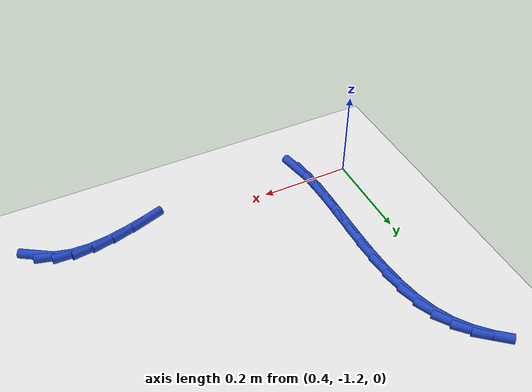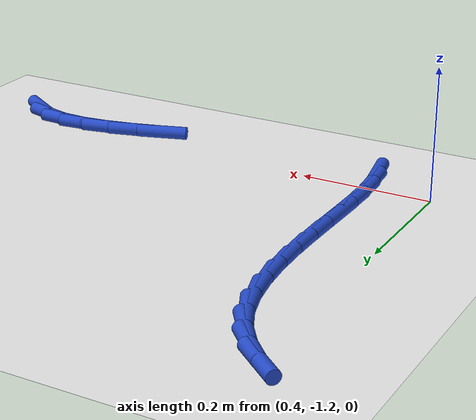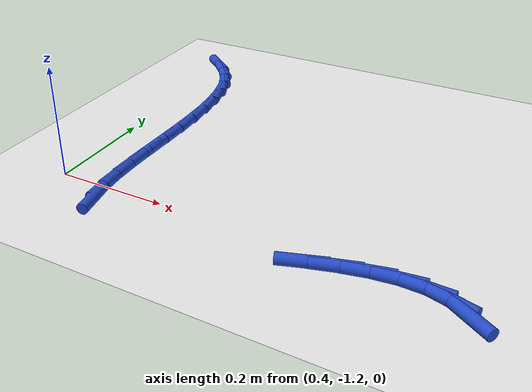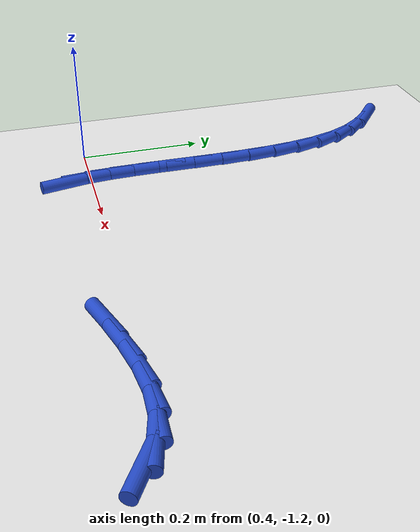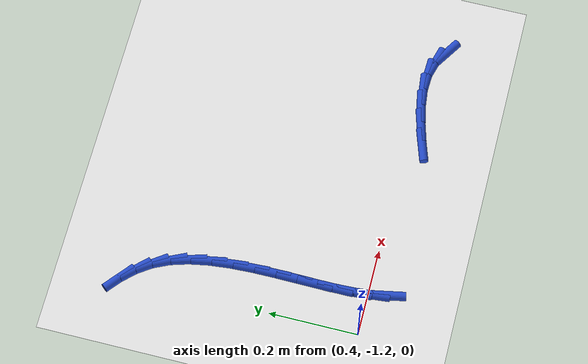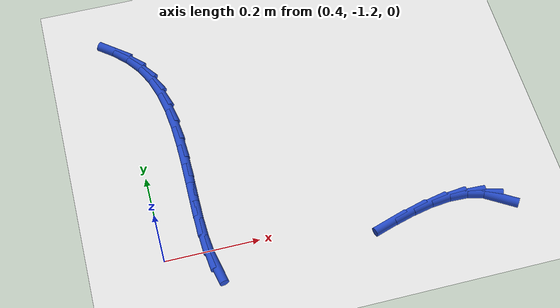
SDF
<sdf version="1.6">
 <world name="default">
  <model name="ground_plane">
   <static>1</static>
   <link name="link">
    <collision name="collision">
     <geometry><plane><normal>0 0 1</normal><size>100 100</size></plane></geometry>
     <surface><friction><ode><mu>100</mu><mu2>50</mu2></ode></friction></surface>
    </collision>
    <visual name="visual">
     <cast_shadows>0</cast_shadows>
     <geometry><plane><normal>0 0 1</normal><size>100 100</size></plane></geometry>
     <material>
      <script><uri>file://media/materials/scripts/gazebo.material</uri><name>Gazebo/WhiteGlow</name></script>
     </material>
    </visual>
   </link>
  </model>
  <model name="line">
   <link name="link_208">
    <pose>1.1066500811658857 -1.2365685479417203 0.01 0 1.57 -0.5632479367477995</pose>
    <collision name="collision">
     <geometry><cylinder><radius>0.01</radius><length>0.08</length></cylinder></geometry>
    </collision>
    <visual name="visual">
     <material>
      <script><name>Gazebo/Blue</name><uri>file://media/materials/scripts/gazebo.material</uri></script>
     </material>
     <geometry><cylinder><radius>0.01</radius><length>0.08</length></cylinder></geometry>
    </visual>
   </link>
   <link name="link_209">
    <pose>1.0775888376421126 -1.2182168558706332 0.01 0 1.57 -0.26173927755150384</pose>
    <collision name="collision">
     <geometry><cylinder><radius>0.01</radius><length>0.08</length></cylinder></geometry>
    </collision>
    <visual name="visual">
     <material>
      <script><name>Gazebo/Blue</name><uri>file://media/materials/scripts/gazebo.material</uri></script>
     </material>
     <geometry><cylinder><radius>0.01</radius><length>0.08</length></cylinder></geometry>
    </visual>
   </link>
   <link name="link_210">
    <pose>1.0430972445284719 -1.2089770834687 0.01 0 1.57 -0.03852570394564803</pose>
    <collision name="collision">
     <geometry><cylinder><radius>0.01</radius><length>0.08</length></cylinder></geometry>
    </collision>
    <visual name="visual">
     <material>
      <script><name>Gazebo/Blue</name><uri>file://media/materials/scripts/gazebo.material</uri></script>
     </material>
     <geometry><cylinder><radius>0.01</radius><length>0.08</length></cylinder></geometry>
    </visual>
   </link>
   <link name="link_211">
    <pose>1.0041111402777445 -1.2074743728287647 0.01 0 1.57 0.11372780768299451</pose>
    <collision name="collision">
     <geometry><cylinder><radius>0.01</radius><length>0.08</length></cylinder></geometry>
    </collision>
    <visual name="visual">
     <material>
      <script><name>Gazebo/Blue</name><uri>file://media/materials/scripts/gazebo.material</uri></script>
     </material>
     <geometry><cylinder><radius>0.01</radius><length>0.08</length></cylinder></geometry>
    </visual>
   </link>
   <link name="link_212">
    <pose>0.9615663633427146 -1.2123338660436753 0.01 0 1.57 0.214648176576915</pose>
    <collision name="collision">
     <geometry><cylinder><radius>0.01</radius><length>0.08</length></cylinder></geometry>
    </collision>
    <visual name="visual">
     <material>
      <script><name>Gazebo/Blue</name><uri>file://media/materials/scripts/gazebo.material</uri></script>
     </material>
     <geometry><cylinder><radius>0.01</radius><length>0.08</length></cylinder></geometry>
    </visual>
   </link>
   <link name="link_213">
    <pose>0.916398752176163 -1.2221807052062776 0.01 0 1.57 0.27972562378590154</pose>
    <collision name="collision">
     <geometry><cylinder><radius>0.01</radius><length>0.08</length></cylinder></geometry>
    </collision>
    <visual name="visual">
     <material>
      <script><name>Gazebo/Blue</name><uri>file://media/materials/scripts/gazebo.material</uri></script>
     </material>
     <geometry><cylinder><radius>0.01</radius><length>0.08</length></cylinder></geometry>
    </visual>
   </link>
   <link name="link_214">
    <pose>0.869544145230875 -1.2356400324094166 0.01 0 1.57 0.3185023262385388</pose>
    <collision name="collision">
     <geometry><cylinder><radius>0.01</radius><length>0.08</length></cylinder></geometry>
    </collision>
    <visual name="visual">
     <material>
      <script><name>Gazebo/Blue</name><uri>file://media/materials/scripts/gazebo.material</uri></script>
     </material>
     <geometry><cylinder><radius>0.01</radius><length>0.08</length></cylinder></geometry>
    </visual>
   </link>
   <link name="link_225">
    <pose>0.5001221642047236 -1.2423184709547694 0.01 0 1.57 -1.3781047402267745</pose>
    <collision name="collision">
     <geometry><cylinder><radius>0.01</radius><length>0.08</length></cylinder></geometry>
    </collision>
    <visual name="visual">
     <material>
      <script><name>Gazebo/Blue</name><uri>file://media/materials/scripts/gazebo.material</uri></script>
     </material>
     <geometry><cylinder><radius>0.01</radius><length>0.08</length></cylinder></geometry>
    </visual>
   </link>
   <link name="link_226">
    <pose>0.49346331831398366 -1.2081902204230692 0.01 0 1.57 -1.4773316086922346</pose>
    <collision name="collision">
     <geometry><cylinder><radius>0.01</radius><length>0.08</length></cylinder></geometry>
    </collision>
    <visual name="visual">
     <material>
      <script><name>Gazebo/Blue</name><uri>file://media/materials/scripts/gazebo.material</uri></script>
     </material>
     <geometry><cylinder><radius>0.01</radius><length>0.08</length></cylinder></geometry>
    </visual>
   </link>
   <link name="link_227">
    <pose>0.4898340518722094 -1.1694730194213152 0.01 0 1.57 -1.5378362701757595</pose>
    <collision name="collision">
     <geometry><cylinder><radius>0.01</radius><length>0.08</length></cylinder></geometry>
    </collision>
    <visual name="visual">
     <material>
      <script><name>Gazebo/Blue</name><uri>file://media/materials/scripts/gazebo.material</uri></script>
     </material>
     <geometry><cylinder><radius>0.01</radius><length>0.08</length></cylinder></geometry>
    </visual>
   </link>
   <link name="link_228">
    <pose>0.4884351069312926 -1.1270447453453794 0.01 0 1.57 1.5700867032096348</pose>
    <collision name="collision">
     <geometry><cylinder><radius>0.01</radius><length>0.08</length></cylinder></geometry>
    </collision>
    <visual name="visual">
     <material>
      <script><name>Gazebo/Blue</name><uri>file://media/materials/scripts/gazebo.material</uri></script>
     </material>
     <geometry><cylinder><radius>0.01</radius><length>0.08</length></cylinder></geometry>
    </visual>
   </link>
   <link name="link_229">
    <pose>0.4884672255431251 -1.0817832755911345 0.01 0 1.57 1.5567360636366474</pose>
    <collision name="collision">
     <geometry><cylinder><radius>0.01</radius><length>0.08</length></cylinder></geometry>
    </collision>
    <visual name="visual">
     <material>
      <script><name>Gazebo/Blue</name><uri>file://media/materials/scripts/gazebo.material</uri></script>
     </material>
     <geometry><cylinder><radius>0.01</radius><length>0.08</length></cylinder></geometry>
    </visual>
   </link>
   <link name="link_230">
    <pose>0.4891311497595988 -1.0345664875544556 0.01 0 1.57 1.5605165398329173</pose>
    <collision name="collision">
     <geometry><cylinder><radius>0.01</radius><length>0.08</length></cylinder></geometry>
    </collision>
    <visual name="visual">
     <material>
      <script><name>Gazebo/Blue</name><uri>file://media/materials/scripts/gazebo.material</uri></script>
     </material>
     <geometry><cylinder><radius>0.01</radius><length>0.08</length></cylinder></geometry>
    </visual>
   </link>
   <link name="link_231">
    <pose>0.48962762163260554 -0.9862722586312149 0.01 0 1.57 -1.561099752094528</pose>
    <collision name="collision">
     <geometry><cylinder><radius>0.01</radius><length>0.08</length></cylinder></geometry>
    </collision>
    <visual name="visual">
     <material>
      <script><name>Gazebo/Blue</name><uri>file://media/materials/scripts/gazebo.material</uri></script>
     </material>
     <geometry><cylinder><radius>0.01</radius><length>0.08</length></cylinder></geometry>
    </visual>
   </link>
   <link name="link_232">
    <pose>0.4891573832140371 -0.9377784662172859 0.01 0 1.57 -1.5240629566282695</pose>
    <collision name="collision">
     <geometry><cylinder><radius>0.01</radius><length>0.08</length></cylinder></geometry>
    </collision>
    <visual name="visual">
     <material>
      <script><name>Gazebo/Blue</name><uri>file://media/materials/scripts/gazebo.material</uri></script>
     </material>
     <geometry><cylinder><radius>0.01</radius><length>0.08</length></cylinder></geometry>
    </visual>
   </link>
   <link name="link_233">
    <pose>0.4869211765557855 -0.8899629877085412 0.01 0 1.57 -1.4673727440749156</pose>
    <collision name="collision">
     <geometry><cylinder><radius>0.01</radius><length>0.08</length></cylinder></geometry>
    </collision>
    <visual name="visual">
     <material>
      <script><name>Gazebo/Blue</name><uri>file://media/materials/scripts/gazebo.material</uri></script>
     </material>
     <geometry><cylinder><radius>0.01</radius><length>0.08</length></cylinder></geometry>
    </visual>
   </link>
   <link name="link_234">
    <pose>0.48211974370974253 -0.8437037005008543 0.01 0 1.57 -1.3865796735610674</pose>
    <collision name="collision">
     <geometry><cylinder><radius>0.01</radius><length>0.08</length></cylinder></geometry>
    </collision>
    <visual name="visual">
     <material>
      <script><name>Gazebo/Blue</name><uri>file://media/materials/scripts/gazebo.material</uri></script>
     </material>
     <geometry><cylinder><radius>0.01</radius><length>0.08</length></cylinder></geometry>
    </visual>
   </link>
   <link name="link_235">
    <pose>0.47395382672779995 -0.7998784819900983 0.01 0 1.57 -1.2753660468389152</pose>
    <collision name="collision">
     <geometry><cylinder><radius>0.01</radius><length>0.08</length></cylinder></geometry>
    </collision>
    <visual name="visual">
     <material>
      <script><name>Gazebo/Blue</name><uri>file://media/materials/scripts/gazebo.material</uri></script>
     </material>
     <geometry><cylinder><radius>0.01</radius><length>0.08</length></cylinder></geometry>
    </visual>
   </link>
   <link name="link_236">
    <pose>0.4616241676618491 -0.7593652095721449 0.01 0 1.57 -1.1266096440372408</pose>
    <collision name="collision">
     <geometry><cylinder><radius>0.01</radius><length>0.08</length></cylinder></geometry>
    </collision>
    <visual name="visual">
     <material>
      <script><name>Gazebo/Blue</name><uri>file://media/materials/scripts/gazebo.material</uri></script>
     </material>
     <geometry><cylinder><radius>0.01</radius><length>0.08</length></cylinder></geometry>
    </visual>
   </link>
   <link name="link_237">
    <pose>0.4443357122471512 -0.7230376941856345 0.01 0 1.57 -0.9547561025264674</pose>
    <collision name="collision">
     <geometry><cylinder><radius>0.01</radius><length>0.08</length></cylinder></geometry>
    </collision>
    <visual name="visual">
     <material>
      <script><name>Gazebo/Blue</name><uri>file://media/materials/scripts/gazebo.material</uri></script>
     </material>
     <geometry><cylinder><radius>0.01</radius><length>0.08</length></cylinder></geometry>
    </visual>
   </link>
   <link name="link_238">
    <pose>0.42183127928778996 -0.6912494321686706 0.01 0 1.57 -0.8037181940696101</pose>
    <collision name="collision">
     <geometry><cylinder><radius>0.01</radius><length>0.08</length></cylinder></geometry>
    </collision>
    <visual name="visual">
     <material>
      <script><name>Gazebo/Blue</name><uri>file://media/materials/scripts/gazebo.material</uri></script>
     </material>
     <geometry><cylinder><radius>0.01</radius><length>0.08</length></cylinder></geometry>
    </visual>
   </link>
   <link name="link_239">
    <pose>0.3949144181625449 -0.6633278160493039 0.01 0 1.57 -0.6852100030012417</pose>
    <collision name="collision">
     <geometry><cylinder><radius>0.01</radius><length>0.08</length></cylinder></geometry>
    </collision>
    <visual name="visual">
     <material>
      <script><name>Gazebo/Blue</name><uri>file://media/materials/scripts/gazebo.material</uri></script>
     </material>
     <geometry><cylinder><radius>0.01</radius><length>0.08</length></cylinder></geometry>
    </visual>
   </link>
  </model>
 </world>
</sdf>
